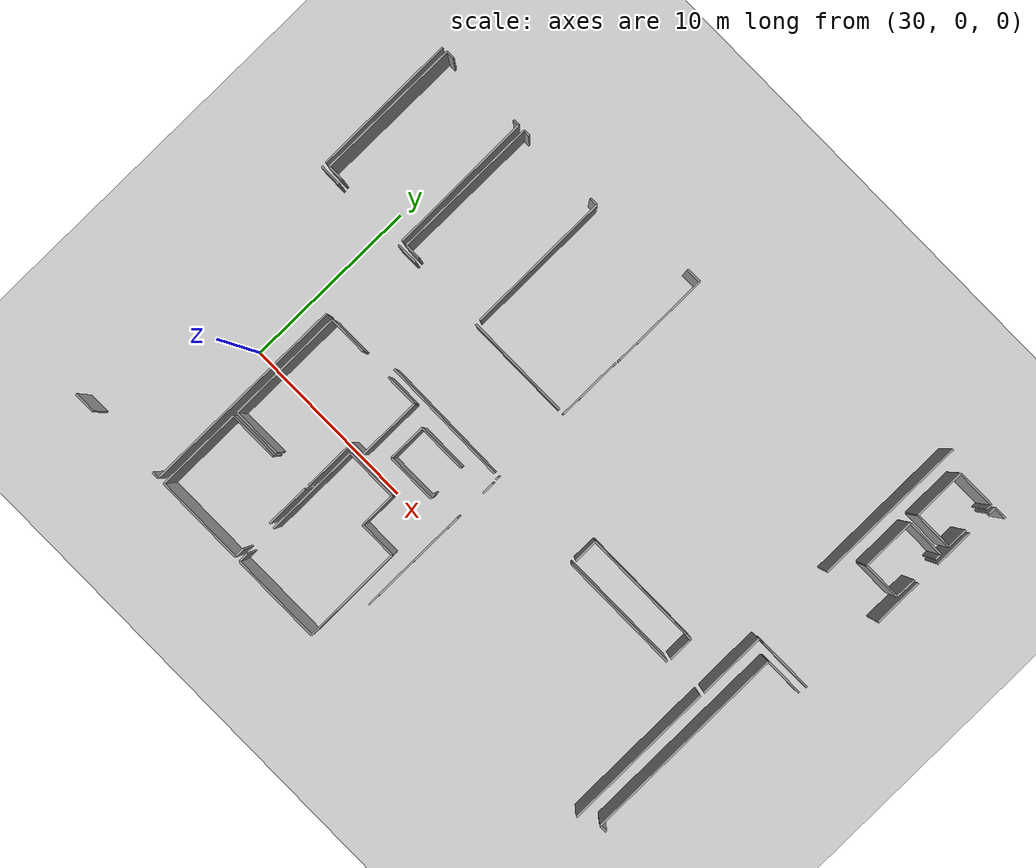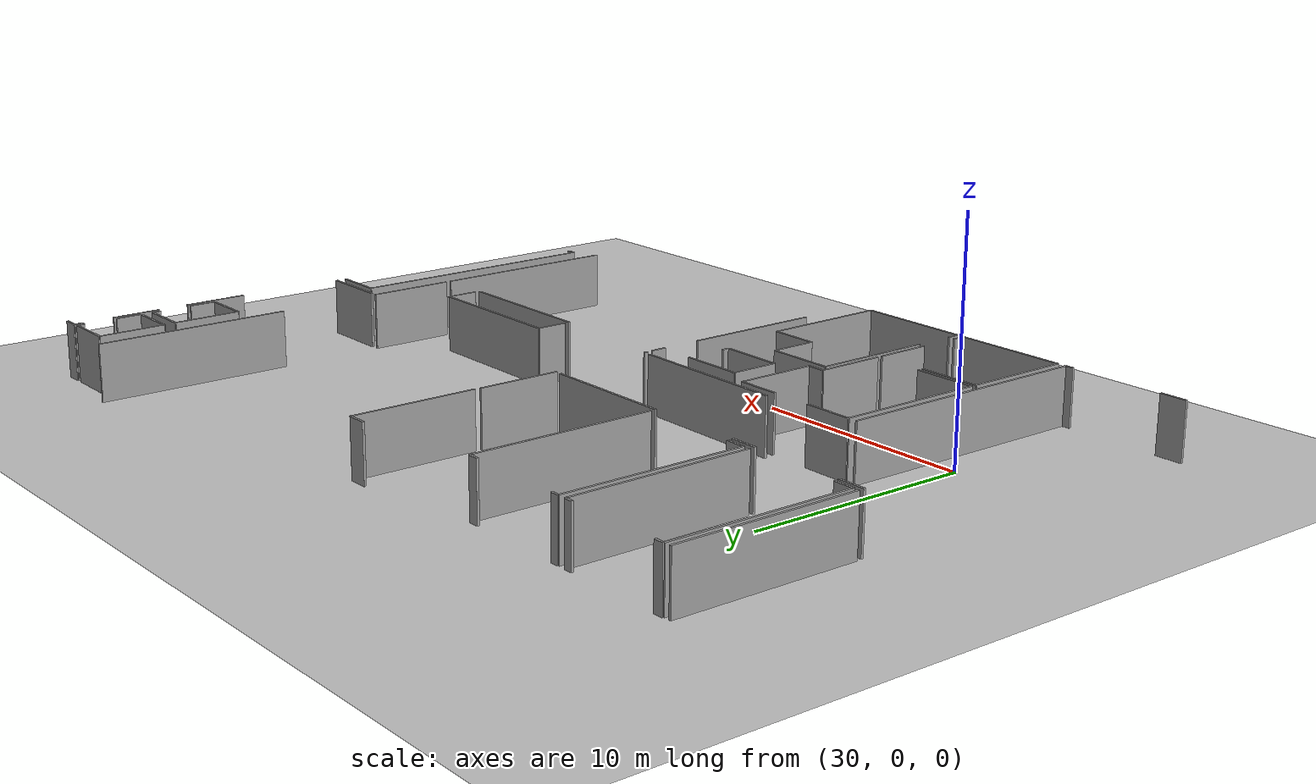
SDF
<sdf version="1.6">
 <world name="default">
  <model name="ground_plane">
   <static>1</static>
   <link name="link">
    <collision name="collision">
     <geometry><plane><normal>0 0 1</normal><size>100 100</size></plane></geometry>
     <surface><friction><ode><mu>100</mu><mu2>50</mu2></ode></friction></surface>
    </collision>
    <visual name="visual">
     <cast_shadows>0</cast_shadows>
     <geometry><plane><normal>0 0 1</normal><size>100 100</size></plane></geometry>
     <material>
      <script><uri>file://media/materials/scripts/gazebo.material</uri><name>Gazebo/Grey</name></script>
     </material>
    </visual>
   </link>
  </model>
  <model name="50037764_PLAN2">
   <static>1</static>
   <link name="Wall_268">
    <collision name="Wall_268_Collision">
     <geometry><box><size>5.89633433321 0.1 2.5</size></box></geometry>
     <pose>2.94816716661 0 1.25 0 0 0</pose>
    </collision>
    <visual name="Wall_268_Visual">
     <pose>2.94816716661 0 1.25 0 0 0</pose>
     <geometry><box><size>5.89633433321 0.1 2.5</size></box></geometry>
     <material>
      <script><uri>file://media/materials/scripts/gazebo.material</uri><name>Gazebo/Grey</name></script>
      <ambient>1 1 1 1</ambient>
     </material>
    </visual>
    <pose>178.520209467 -12.4780873456 0 0 0 3.14159265359</pose>
   </link>
   <link name="Wall_269">
    <collision name="Wall_269_Collision">
     <geometry><box><size>1.21333062179 0.1 2.5</size></box></geometry>
     <pose>0.606665310895 0 1.25 0 0 0</pose>
    </collision>
    <visual name="Wall_269_Visual">
     <pose>0.606665310895 0 1.25 0 0 0</pose>
     <geometry><box><size>1.21333062179 0.1 2.5</size></box></geometry>
     <material>
      <script><uri>file://media/materials/scripts/gazebo.material</uri><name>Gazebo/Grey</name></script>
      <ambient>1 1 1 1</ambient>
     </material>
    </visual>
    <pose>168.37124409 -12.4780873456 0 0 0 3.14159265359</pose>
   </link>
   <link name="Wall_270">
    <collision name="Wall_270_Collision">
     <geometry><box><size>1.20621282221 0.1 2.5</size></box></geometry>
     <pose>0.603106411104 0 1.25 0 0 0</pose>
    </collision>
    <visual name="Wall_270_Visual">
     <pose>0.603106411104 0 1.25 0 0 0</pose>
     <geometry><box><size>1.20621282221 0.1 2.5</size></box></geometry>
     <material>
      <script><uri>file://media/materials/scripts/gazebo.material</uri><name>Gazebo/Grey</name></script>
      <ambient>1 1 1 1</ambient>
     </material>
    </visual>
    <pose>162.987137119 -12.4780873456 0 0 0 3.14159265359</pose>
   </link>
   <link name="Wall_286">
    <collision name="Wall_286_Collision">
     <geometry><box><size>7.1165475396 0.1 2.5</size></box></geometry>
     <pose>3.5582737698 0 1.25 0 0 0</pose>
    </collision>
    <visual name="Wall_286_Visual">
     <pose>3.5582737698 0 1.25 0 0 0</pose>
     <geometry><box><size>7.1165475396 0.1 2.5</size></box></geometry>
     <material>
      <script><uri>file://media/materials/scripts/gazebo.material</uri><name>Gazebo/Grey</name></script>
      <ambient>1 1 1 1</ambient>
     </material>
    </visual>
    <pose>171.403935126 -16.8886826987 0 0 0 -0.00876236772157</pose>
   </link>
   <link name="Wall_327">
    <collision name="Wall_327_Collision">
     <geometry><box><size>8.08495808962 0.1 2.5</size></box></geometry>
     <pose>4.04247904481 0 1.25 0 0 0</pose>
    </collision>
    <visual name="Wall_327_Visual">
     <pose>4.04247904481 0 1.25 0 0 0</pose>
     <geometry><box><size>8.08495808962 0.1 2.5</size></box></geometry>
     <material>
      <script><uri>file://media/materials/scripts/gazebo.material</uri><name>Gazebo/Grey</name></script>
      <ambient>1 1 1 1</ambient>
     </material>
    </visual>
    <pose>161.756266206 -4.13188265799 0 0 0 -1.56639443473</pose>
   </link>
   <link name="Wall_328">
    <collision name="Wall_328_Collision">
     <geometry><box><size>0.890233362143 0.1 2.5</size></box></geometry>
     <pose>0.445116681072 0 1.25 0 0 0</pose>
    </collision>
    <visual name="Wall_328_Visual">
     <pose>0.445116681072 0 1.25 0 0 0</pose>
     <geometry><box><size>0.890233362143 0.1 2.5</size></box></geometry>
     <material>
      <script><uri>file://media/materials/scripts/gazebo.material</uri><name>Gazebo/Grey</name></script>
      <ambient>1 1 1 1</ambient>
     </material>
    </visual>
    <pose>162.941634043 -12.2215160913 0 0 0 3.14159265359</pose>
   </link>
   <link name="Wall_329">
    <collision name="Wall_329_Collision">
     <geometry><box><size>8.09926788347 0.1 2.5</size></box></geometry>
     <pose>4.04963394174 0 1.25 0 0 0</pose>
    </collision>
    <visual name="Wall_329_Visual">
     <pose>4.04963394174 0 1.25 0 0 0</pose>
     <geometry><box><size>8.09926788347 0.1 2.5</size></box></geometry>
     <material>
      <script><uri>file://media/materials/scripts/gazebo.material</uri><name>Gazebo/Grey</name></script>
      <ambient>1 1 1 1</ambient>
     </material>
    </visual>
    <pose>162.051400681 -12.2215160913 0 0 0 1.57079632679</pose>
   </link>
   <link name="Wall_330">
    <collision name="Wall_330_Collision">
     <geometry><box><size>0.449183995119 0.1 2.5</size></box></geometry>
     <pose>0.22459199756 0 1.25 0 0 0</pose>
    </collision>
    <visual name="Wall_330_Visual">
     <pose>0.22459199756 0 1.25 0 0 0</pose>
     <geometry><box><size>0.449183995119 0.1 2.5</size></box></geometry>
     <material>
      <script><uri>file://media/materials/scripts/gazebo.material</uri><name>Gazebo/Grey</name></script>
      <ambient>1 1 1 1</ambient>
     </material>
    </visual>
    <pose>162.051400681 -4.12224820784 0 0 0 0.0</pose>
   </link>
   <link name="Wall_331">
    <collision name="Wall_331_Collision">
     <geometry><box><size>0.368346128425 0.1 2.5</size></box></geometry>
     <pose>0.184173064213 0 1.25 0 0 0</pose>
    </collision>
    <visual name="Wall_331_Visual">
     <pose>0.184173064213 0 1.25 0 0 0</pose>
     <geometry><box><size>0.368346128425 0.1 2.5</size></box></geometry>
     <material>
      <script><uri>file://media/materials/scripts/gazebo.material</uri><name>Gazebo/Grey</name></script>
      <ambient>1 1 1 1</ambient>
     </material>
    </visual>
    <pose>166.728049214 -4.12224820784 0 0 0 0.0</pose>
   </link>
   <link name="Wall_332">
    <collision name="Wall_332_Collision">
     <geometry><box><size>8.09960802235 0.1 2.5</size></box></geometry>
     <pose>4.04980401117 0 1.25 0 0 0</pose>
    </collision>
    <visual name="Wall_332_Visual">
     <pose>4.04980401117 0 1.25 0 0 0</pose>
     <geometry><box><size>8.09960802235 0.1 2.5</size></box></geometry>
     <material>
      <script><uri>file://media/materials/scripts/gazebo.material</uri><name>Gazebo/Grey</name></script>
      <ambient>1 1 1 1</ambient>
     </material>
    </visual>
    <pose>167.096395343 -4.12224820784 0 0 0 -1.56163174497</pose>
   </link>
   <link name="Wall_333">
    <collision name="Wall_333_Collision">
     <geometry><box><size>0.869134170522 0.1 2.5</size></box></geometry>
     <pose>0.434567085261 0 1.25 0 0 0</pose>
    </collision>
    <visual name="Wall_333_Visual">
     <pose>0.434567085261 0 1.25 0 0 0</pose>
     <geometry><box><size>0.869134170522 0.1 2.5</size></box></geometry>
     <material>
      <script><uri>file://media/materials/scripts/gazebo.material</uri><name>Gazebo/Grey</name></script>
      <ambient>1 1 1 1</ambient>
     </material>
    </visual>
    <pose>168.340993441 -12.216762418 0 0 0 3.14159265359</pose>
   </link>
   <link name="Wall_334">
    <collision name="Wall_334_Collision">
     <geometry><box><size>8.09657328791 0.1 2.5</size></box></geometry>
     <pose>4.04828664396 0 1.25 0 0 0</pose>
    </collision>
    <visual name="Wall_334_Visual">
     <pose>4.04828664396 0 1.25 0 0 0</pose>
     <geometry><box><size>8.09657328791 0.1 2.5</size></box></geometry>
     <material>
      <script><uri>file://media/materials/scripts/gazebo.material</uri><name>Gazebo/Grey</name></script>
      <ambient>1 1 1 1</ambient>
     </material>
    </visual>
    <pose>167.471859271 -12.216762418 0 0 0 1.57079632679</pose>
   </link>
   <link name="Wall_335">
    <collision name="Wall_335_Collision">
     <geometry><box><size>0.368600335553 0.1 2.5</size></box></geometry>
     <pose>0.184300167777 0 1.25 0 0 0</pose>
    </collision>
    <visual name="Wall_335_Visual">
     <pose>0.184300167777 0 1.25 0 0 0</pose>
     <geometry><box><size>0.368600335553 0.1 2.5</size></box></geometry>
     <material>
      <script><uri>file://media/materials/scripts/gazebo.material</uri><name>Gazebo/Grey</name></script>
      <ambient>1 1 1 1</ambient>
     </material>
    </visual>
    <pose>167.471859271 -4.1201891301 0 0 0 0.0</pose>
   </link>
   <link name="Wall_336">
    <collision name="Wall_336_Collision">
     <geometry><box><size>0.468249529717 0.1 2.5</size></box></geometry>
     <pose>0.234124764858 0 1.25 0 0 0</pose>
    </collision>
    <visual name="Wall_336_Visual">
     <pose>0.234124764858 0 1.25 0 0 0</pose>
     <geometry><box><size>0.468249529717 0.1 2.5</size></box></geometry>
     <material>
      <script><uri>file://media/materials/scripts/gazebo.material</uri><name>Gazebo/Grey</name></script>
      <ambient>1 1 1 1</ambient>
     </material>
    </visual>
    <pose>172.122578677 -4.1201891301 0 0 0 0.0</pose>
   </link>
   <link name="Wall_337">
    <collision name="Wall_337_Collision">
     <geometry><box><size>8.09666427833 0.1 2.5</size></box></geometry>
     <pose>4.04833213917 0 1.25 0 0 0</pose>
    </collision>
    <visual name="Wall_337_Visual">
     <pose>4.04833213917 0 1.25 0 0 0</pose>
     <geometry><box><size>8.09666427833 0.1 2.5</size></box></geometry>
     <material>
      <script><uri>file://media/materials/scripts/gazebo.material</uri><name>Gazebo/Grey</name></script>
      <ambient>1 1 1 1</ambient>
     </material>
    </visual>
    <pose>172.590828207 -4.1201891301 0 0 0 -1.56605543366</pose>
   </link>
   <link name="Wall_372">
    <collision name="Wall_372_Collision">
     <geometry><box><size>0.393766841222 0.1 2.5</size></box></geometry>
     <pose>0.196883420611 0 1.25 0 0 0</pose>
    </collision>
    <visual name="Wall_372_Visual">
     <pose>0.196883420611 0 1.25 0 0 0</pose>
     <geometry><box><size>0.393766841222 0.1 2.5</size></box></geometry>
     <material>
      <script><uri>file://media/materials/scripts/gazebo.material</uri><name>Gazebo/Grey</name></script>
      <ambient>1 1 1 1</ambient>
     </material>
    </visual>
    <pose>167.128933855 -28.941227312 0 0 0 3.14159265359</pose>
   </link>
   <link name="Wall_373">
    <collision name="Wall_373_Collision">
     <geometry><box><size>1.19960343688 0.1 2.5</size></box></geometry>
     <pose>0.59980171844 0 1.25 0 0 0</pose>
    </collision>
    <visual name="Wall_373_Visual">
     <pose>0.59980171844 0 1.25 0 0 0</pose>
     <geometry><box><size>1.19960343688 0.1 2.5</size></box></geometry>
     <material>
      <script><uri>file://media/materials/scripts/gazebo.material</uri><name>Gazebo/Grey</name></script>
      <ambient>1 1 1 1</ambient>
     </material>
    </visual>
    <pose>162.544054095 -28.941227312 0 0 0 3.14159265359</pose>
   </link>
   <link name="Wall_378">
    <collision name="Wall_378_Collision">
     <geometry><box><size>11.5734404393 0.1 2.5</size></box></geometry>
     <pose>5.78672021963 0 1.25 0 0 0</pose>
    </collision>
    <visual name="Wall_378_Visual">
     <pose>5.78672021963 0 1.25 0 0 0</pose>
     <geometry><box><size>11.5734404393 0.1 2.5</size></box></geometry>
     <material>
      <script><uri>file://media/materials/scripts/gazebo.material</uri><name>Gazebo/Grey</name></script>
      <ambient>1 1 1 1</ambient>
     </material>
    </visual>
    <pose>167.128933855 -17.3677868727 0 0 0 -1.57079632679</pose>
   </link>
   <link name="Wall_379">
    <collision name="Wall_379_Collision">
     <geometry><box><size>6.54357110173 0.1 2.5</size></box></geometry>
     <pose>3.27178555087 0 1.25 0 0 0</pose>
    </collision>
    <visual name="Wall_379_Visual">
     <pose>3.27178555087 0 1.25 0 0 0</pose>
     <geometry><box><size>6.54357110173 0.1 2.5</size></box></geometry>
     <material>
      <script><uri>file://media/materials/scripts/gazebo.material</uri><name>Gazebo/Grey</name></script>
      <ambient>1 1 1 1</ambient>
     </material>
    </visual>
    <pose>167.538715746 -23.9208907418 0 0 0 1.57079632679</pose>
   </link>
   <link name="Wall_380">
    <collision name="Wall_380_Collision">
     <geometry><box><size>2.16609893741 0.1 2.5</size></box></geometry>
     <pose>1.08304946871 0 1.25 0 0 0</pose>
    </collision>
    <visual name="Wall_380_Visual">
     <pose>1.08304946871 0 1.25 0 0 0</pose>
     <geometry><box><size>2.16609893741 0.1 2.5</size></box></geometry>
     <material>
      <script><uri>file://media/materials/scripts/gazebo.material</uri><name>Gazebo/Grey</name></script>
      <ambient>1 1 1 1</ambient>
     </material>
    </visual>
    <pose>167.538715746 -17.37731964 0 0 0 0.0</pose>
   </link>
   <link name="Wall_381">
    <collision name="Wall_381_Collision">
     <geometry><box><size>1.8524073415 0.1 2.5</size></box></geometry>
     <pose>0.926203670751 0 1.25 0 0 0</pose>
    </collision>
    <visual name="Wall_381_Visual">
     <pose>0.926203670751 0 1.25 0 0 0</pose>
     <geometry><box><size>1.8524073415 0.1 2.5</size></box></geometry>
     <material>
      <script><uri>file://media/materials/scripts/gazebo.material</uri><name>Gazebo/Grey</name></script>
      <ambient>1 1 1 1</ambient>
     </material>
    </visual>
    <pose>171.48324775 -17.37731964 0 0 0 0.0</pose>
   </link>
   <link name="Wall_382">
    <collision name="Wall_382_Collision">
     <geometry><box><size>3.5301998068 0.1 2.5</size></box></geometry>
     <pose>1.7650999034 0 1.25 0 0 0</pose>
    </collision>
    <visual name="Wall_382_Visual">
     <pose>1.7650999034 0 1.25 0 0 0</pose>
     <geometry><box><size>3.5301998068 0.1 2.5</size></box></geometry>
     <material>
      <script><uri>file://media/materials/scripts/gazebo.material</uri><name>Gazebo/Grey</name></script>
      <ambient>1 1 1 1</ambient>
     </material>
    </visual>
    <pose>173.335655092 -17.37731964 0 0 0 -1.57079632679</pose>
   </link>
   <link name="Wall_383">
    <collision name="Wall_383_Collision">
     <geometry><box><size>0.777619604454 0.1 2.5</size></box></geometry>
     <pose>0.388809802227 0 1.25 0 0 0</pose>
    </collision>
    <visual name="Wall_383_Visual">
     <pose>0.388809802227 0 1.25 0 0 0</pose>
     <geometry><box><size>0.777619604454 0.1 2.5</size></box></geometry>
     <material>
      <script><uri>file://media/materials/scripts/gazebo.material</uri><name>Gazebo/Grey</name></script>
      <ambient>1 1 1 1</ambient>
     </material>
    </visual>
    <pose>173.335655092 -20.9075194468 0 0 0 3.14159265359</pose>
   </link>
   <link name="Wall_384">
    <collision name="Wall_384_Collision">
     <geometry><box><size>3.00650770248 0.1 2.5</size></box></geometry>
     <pose>1.50325385124 0 1.25 0 0 0</pose>
    </collision>
    <visual name="Wall_384_Visual">
     <pose>1.50325385124 0 1.25 0 0 0</pose>
     <geometry><box><size>3.00650770248 0.1 2.5</size></box></geometry>
     <material>
      <script><uri>file://media/materials/scripts/gazebo.material</uri><name>Gazebo/Grey</name></script>
      <ambient>1 1 1 1</ambient>
     </material>
    </visual>
    <pose>172.558035487 -20.9075194468 0 0 0 -1.57079632679</pose>
   </link>
   <link name="Wall_385">
    <collision name="Wall_385_Collision">
     <geometry><box><size>2.7739166718 0.1 2.5</size></box></geometry>
     <pose>1.3869583359 0 1.25 0 0 0</pose>
    </collision>
    <visual name="Wall_385_Visual">
     <pose>1.3869583359 0 1.25 0 0 0</pose>
     <geometry><box><size>2.7739166718 0.1 2.5</size></box></geometry>
     <material>
      <script><uri>file://media/materials/scripts/gazebo.material</uri><name>Gazebo/Grey</name></script>
      <ambient>1 1 1 1</ambient>
     </material>
    </visual>
    <pose>170.312623926 -23.9140271493 0 0 0 -3.13911831846</pose>
   </link>
   <link name="Wall_386">
    <collision name="Wall_386_Collision">
     <geometry><box><size>5.01754029183 0.1 2.5</size></box></geometry>
     <pose>2.50877014591 0 1.25 0 0 0</pose>
    </collision>
    <visual name="Wall_386_Visual">
     <pose>2.50877014591 0 1.25 0 0 0</pose>
     <geometry><box><size>5.01754029183 0.1 2.5</size></box></geometry>
     <material>
      <script><uri>file://media/materials/scripts/gazebo.material</uri><name>Gazebo/Grey</name></script>
      <ambient>1 1 1 1</ambient>
     </material>
    </visual>
    <pose>172.542020438 -28.9297879913 0 0 0 3.14159265359</pose>
   </link>
   <link name="Wall_387">
    <collision name="Wall_387_Collision">
     <geometry><box><size>4.77756876303 0.1 2.5</size></box></geometry>
     <pose>2.38878438151 0 1.25 0 0 0</pose>
    </collision>
    <visual name="Wall_387_Visual">
     <pose>2.38878438151 0 1.25 0 0 0</pose>
     <geometry><box><size>4.77756876303 0.1 2.5</size></box></geometry>
     <material>
      <script><uri>file://media/materials/scripts/gazebo.material</uri><name>Gazebo/Grey</name></script>
      <ambient>1 1 1 1</ambient>
     </material>
    </visual>
    <pose>167.524480146 -28.9297879913 0 0 0 1.57079632679</pose>
   </link>
   <link name="Wall_388">
    <collision name="Wall_388_Collision">
     <geometry><box><size>2.78051756571 0.1 2.5</size></box></geometry>
     <pose>1.39025878286 0 1.25 0 0 0</pose>
    </collision>
    <visual name="Wall_388_Visual">
     <pose>1.39025878286 0 1.25 0 0 0</pose>
     <geometry><box><size>2.78051756571 0.1 2.5</size></box></geometry>
     <material>
      <script><uri>file://media/materials/scripts/gazebo.material</uri><name>Gazebo/Grey</name></script>
      <ambient>1 1 1 1</ambient>
     </material>
    </visual>
    <pose>167.524480146 -24.1522192282 0 0 0 0.0</pose>
   </link>
   <link name="Wall_389">
    <collision name="Wall_389_Collision">
     <geometry><box><size>2.4241191723 0.1 2.5</size></box></geometry>
     <pose>1.21205958615 0 1.25 0 0 0</pose>
    </collision>
    <visual name="Wall_389_Visual">
     <pose>1.21205958615 0 1.25 0 0 0</pose>
     <geometry><box><size>2.4241191723 0.1 2.5</size></box></geometry>
     <material>
      <script><uri>file://media/materials/scripts/gazebo.material</uri><name>Gazebo/Grey</name></script>
      <ambient>1 1 1 1</ambient>
     </material>
    </visual>
    <pose>172.552951345 -24.1522192282 0 0 0 -1.57079632679</pose>
   </link>
   <link name="Wall_390">
    <collision name="Wall_390_Collision">
     <geometry><box><size>0.560124972051 0.1 2.5</size></box></geometry>
     <pose>0.280062486025 0 1.25 0 0 0</pose>
    </collision>
    <visual name="Wall_390_Visual">
     <pose>0.280062486025 0 1.25 0 0 0</pose>
     <geometry><box><size>0.560124972051 0.1 2.5</size></box></geometry>
     <material>
      <script><uri>file://media/materials/scripts/gazebo.material</uri><name>Gazebo/Grey</name></script>
      <ambient>1 1 1 1</ambient>
     </material>
    </visual>
    <pose>172.552951345 -28.3697696883 0 0 0 -1.59031268651</pose>
   </link>
   <link name="Wall_391">
    <collision name="Wall_391_Collision">
     <geometry><box><size>5.06914433881 0.1 2.5</size></box></geometry>
     <pose>2.5345721694 0 1.25 0 0 0</pose>
    </collision>
    <visual name="Wall_391_Visual">
     <pose>2.5345721694 0 1.25 0 0 0</pose>
     <geometry><box><size>5.06914433881 0.1 2.5</size></box></geometry>
     <material>
      <script><uri>file://media/materials/scripts/gazebo.material</uri><name>Gazebo/Grey</name></script>
      <ambient>1 1 1 1</ambient>
     </material>
    </visual>
    <pose>177.925873201 -28.9465656617 0 0 0 3.14159265359</pose>
   </link>
   <link name="Wall_392">
    <collision name="Wall_392_Collision">
     <geometry><box><size>0.55671361025 0.1 2.5</size></box></geometry>
     <pose>0.278356805125 0 1.25 0 0 0</pose>
    </collision>
    <visual name="Wall_392_Visual">
     <pose>0.278356805125 0 1.25 0 0 0</pose>
     <geometry><box><size>0.55671361025 0.1 2.5</size></box></geometry>
     <material>
      <script><uri>file://media/materials/scripts/gazebo.material</uri><name>Gazebo/Grey</name></script>
      <ambient>1 1 1 1</ambient>
     </material>
    </visual>
    <pose>172.856728863 -28.9465656617 0 0 0 1.57079632679</pose>
   </link>
   <link name="Wall_393">
    <collision name="Wall_393_Collision">
     <geometry><box><size>5.28471198332 0.1 2.5</size></box></geometry>
     <pose>2.64235599166 0 1.25 0 0 0</pose>
    </collision>
    <visual name="Wall_393_Visual">
     <pose>2.64235599166 0 1.25 0 0 0</pose>
     <geometry><box><size>5.28471198332 0.1 2.5</size></box></geometry>
     <material>
      <script><uri>file://media/materials/scripts/gazebo.material</uri><name>Gazebo/Grey</name></script>
      <ambient>1 1 1 1</ambient>
     </material>
    </visual>
    <pose>172.856728863 -26.6185367838 0 0 0 1.57079632679</pose>
   </link>
   <link name="Wall_394">
    <collision name="Wall_394_Collision">
     <geometry><box><size>2.94524378464 0.1 2.5</size></box></geometry>
     <pose>1.47262189232 0 1.25 0 0 0</pose>
    </collision>
    <visual name="Wall_394_Visual">
     <pose>1.47262189232 0 1.25 0 0 0</pose>
     <geometry><box><size>2.94524378464 0.1 2.5</size></box></geometry>
     <material>
      <script><uri>file://media/materials/scripts/gazebo.material</uri><name>Gazebo/Grey</name></script>
      <ambient>1 1 1 1</ambient>
     </material>
    </visual>
    <pose>172.856728863 -21.3338248004 0 0 0 0.0</pose>
   </link>
   <link name="Wall_395">
    <collision name="Wall_395_Collision">
     <geometry><box><size>2.0260308099 0.1 2.5</size></box></geometry>
     <pose>1.01301540495 0 1.25 0 0 0</pose>
    </collision>
    <visual name="Wall_395_Visual">
     <pose>1.01301540495 0 1.25 0 0 0</pose>
     <geometry><box><size>2.0260308099 0.1 2.5</size></box></geometry>
     <material>
      <script><uri>file://media/materials/scripts/gazebo.material</uri><name>Gazebo/Grey</name></script>
      <ambient>1 1 1 1</ambient>
     </material>
    </visual>
    <pose>175.801972647 -21.3338248004 0 0 0 -1.57079632679</pose>
   </link>
   <link name="Wall_396">
    <collision name="Wall_396_Collision">
     <geometry><box><size>2.0832274137 0.1 2.5</size></box></geometry>
     <pose>1.04161370685 0 1.25 0 0 0</pose>
    </collision>
    <visual name="Wall_396_Visual">
     <pose>1.04161370685 0 1.25 0 0 0</pose>
     <geometry><box><size>2.0832274137 0.1 2.5</size></box></geometry>
     <material>
      <script><uri>file://media/materials/scripts/gazebo.material</uri><name>Gazebo/Grey</name></script>
      <ambient>1 1 1 1</ambient>
     </material>
    </visual>
    <pose>175.801972647 -23.3598556104 0 0 0 0.0</pose>
   </link>
   <link name="Wall_397">
    <collision name="Wall_397_Collision">
     <geometry><box><size>5.5868581065 0.1 2.5</size></box></geometry>
     <pose>2.79342905325 0 1.25 0 0 0</pose>
    </collision>
    <visual name="Wall_397_Visual">
     <pose>2.79342905325 0 1.25 0 0 0</pose>
     <geometry><box><size>5.5868581065 0.1 2.5</size></box></geometry>
     <material>
      <script><uri>file://media/materials/scripts/gazebo.material</uri><name>Gazebo/Grey</name></script>
      <ambient>1 1 1 1</ambient>
     </material>
    </visual>
    <pose>177.885200061 -23.3598556104 0 0 0 -1.56351611688</pose>
   </link>
   <link name="Wall_398">
    <collision name="Wall_398_Collision">
     <geometry><box><size>1.37376074025 0.1 2.5</size></box></geometry>
     <pose>0.686880370126 0 1.25 0 0 0</pose>
    </collision>
    <visual name="Wall_398_Visual">
     <pose>0.686880370126 0 1.25 0 0 0</pose>
     <geometry><box><size>1.37376074025 0.1 2.5</size></box></geometry>
     <material>
      <script><uri>file://media/materials/scripts/gazebo.material</uri><name>Gazebo/Grey</name></script>
      <ambient>1 1 1 1</ambient>
     </material>
    </visual>
    <pose>191.109054858 -17.126925619 0 0 0 1.57079632679</pose>
   </link>
   <link name="Wall_399">
    <collision name="Wall_399_Collision">
     <geometry><box><size>6.71488128527 0.1 2.5</size></box></geometry>
     <pose>3.35744064264 0 1.25 0 0 0</pose>
    </collision>
    <visual name="Wall_399_Visual">
     <pose>3.35744064264 0 1.25 0 0 0</pose>
     <geometry><box><size>6.71488128527 0.1 2.5</size></box></geometry>
     <material>
      <script><uri>file://media/materials/scripts/gazebo.material</uri><name>Gazebo/Grey</name></script>
      <ambient>1 1 1 1</ambient>
     </material>
    </visual>
    <pose>191.109054858 -15.7531648787 0 0 0 3.14159265359</pose>
   </link>
   <link name="Wall_400">
    <collision name="Wall_400_Collision">
     <geometry><box><size>1.35179724439 0.1 2.5</size></box></geometry>
     <pose>0.675898622197 0 1.25 0 0 0</pose>
    </collision>
    <visual name="Wall_400_Visual">
     <pose>0.675898622197 0 1.25 0 0 0</pose>
     <geometry><box><size>1.35179724439 0.1 2.5</size></box></geometry>
     <material>
      <script><uri>file://media/materials/scripts/gazebo.material</uri><name>Gazebo/Grey</name></script>
      <ambient>1 1 1 1</ambient>
     </material>
    </visual>
    <pose>184.394173573 -15.7531648787 0 0 0 -1.57079632679</pose>
   </link>
   <link name="Wall_401">
    <collision name="Wall_401_Collision">
     <geometry><box><size>0.164853322487 0.1 2.5</size></box></geometry>
     <pose>0.0824266612436 0 1.25 0 0 0</pose>
    </collision>
    <visual name="Wall_401_Visual">
     <pose>0.0824266612436 0 1.25 0 0 0</pose>
     <geometry><box><size>0.164853322487 0.1 2.5</size></box></geometry>
     <material>
      <script><uri>file://media/materials/scripts/gazebo.material</uri><name>Gazebo/Grey</name></script>
      <ambient>1 1 1 1</ambient>
     </material>
    </visual>
    <pose>178.800345722 -17.1049621231 0 0 0 1.57079632679</pose>
   </link>
   <link name="Wall_402">
    <collision name="Wall_402_Collision">
     <geometry><box><size>3.61388479333 0.1 2.5</size></box></geometry>
     <pose>1.80694239666 0 1.25 0 0 0</pose>
    </collision>
    <visual name="Wall_402_Visual">
     <pose>1.80694239666 0 1.25 0 0 0</pose>
     <geometry><box><size>3.61388479333 0.1 2.5</size></box></geometry>
     <material>
      <script><uri>file://media/materials/scripts/gazebo.material</uri><name>Gazebo/Grey</name></script>
      <ambient>1 1 1 1</ambient>
     </material>
    </visual>
    <pose>178.800345722 -12.504957039 0 0 0 1.57079632679</pose>
   </link>
   <link name="Wall_403">
    <collision name="Wall_403_Collision">
     <geometry><box><size>3.80410867517 0.1 2.5</size></box></geometry>
     <pose>1.90205433759 0 1.25 0 0 0</pose>
    </collision>
    <visual name="Wall_403_Visual">
     <pose>1.90205433759 0 1.25 0 0 0</pose>
     <geometry><box><size>3.80410867517 0.1 2.5</size></box></geometry>
     <material>
      <script><uri>file://media/materials/scripts/gazebo.material</uri><name>Gazebo/Grey</name></script>
      <ambient>1 1 1 1</ambient>
     </material>
    </visual>
    <pose>193.436829529 -13.3228176318 0 0 0 -1.57019490752</pose>
   </link>
   <link name="Wall_404">
    <collision name="Wall_404_Collision">
     <geometry><box><size>5.48515430373 0.1 2.5</size></box></geometry>
     <pose>2.74257715186 0 1.25 0 0 0</pose>
    </collision>
    <visual name="Wall_404_Visual">
     <pose>2.74257715186 0 1.25 0 0 0</pose>
     <geometry><box><size>5.48515430373 0.1 2.5</size></box></geometry>
     <material>
      <script><uri>file://media/materials/scripts/gazebo.material</uri><name>Gazebo/Grey</name></script>
      <ambient>1 1 1 1</ambient>
     </material>
    </visual>
    <pose>178.83771417 -8.63216228583 0 0 0 1.57079632679</pose>
   </link>
   <link name="Wall_405">
    <collision name="Wall_405_Collision">
     <geometry><box><size>0.865575270731 0.1 2.5</size></box></geometry>
     <pose>0.432787635365 0 1.25 0 0 0</pose>
    </collision>
    <visual name="Wall_405_Visual">
     <pose>0.432787635365 0 1.25 0 0 0</pose>
     <geometry><box><size>0.865575270731 0.1 2.5</size></box></geometry>
     <material>
      <script><uri>file://media/materials/scripts/gazebo.material</uri><name>Gazebo/Grey</name></script>
      <ambient>1 1 1 1</ambient>
     </material>
    </visual>
    <pose>178.83771417 -3.1470079821 0 0 0 3.14159265359</pose>
   </link>
   <link name="Wall_406">
    <collision name="Wall_406_Collision">
     <geometry><box><size>8.63216953238 0.1 2.5</size></box></geometry>
     <pose>4.31608476619 0 1.25 0 0 0</pose>
    </collision>
    <visual name="Wall_406_Visual">
     <pose>4.31608476619 0 1.25 0 0 0</pose>
     <geometry><box><size>8.63216953238 0.1 2.5</size></box></geometry>
     <material>
      <script><uri>file://media/materials/scripts/gazebo.material</uri><name>Gazebo/Grey</name></script>
      <ambient>1 1 1 1</ambient>
     </material>
    </visual>
    <pose>193.431999593 -0.0 0 0 0 -1.57209207484</pose>
   </link>
   <link name="Wall_407">
    <collision name="Wall_407_Collision">
     <geometry><box><size>6.11724032742 0.1 2.5</size></box></geometry>
     <pose>3.05862016371 0 1.25 0 0 0</pose>
    </collision>
    <visual name="Wall_407_Visual">
     <pose>3.05862016371 0 1.25 0 0 0</pose>
     <geometry><box><size>6.11724032742 0.1 2.5</size></box></geometry>
     <material>
      <script><uri>file://media/materials/scripts/gazebo.material</uri><name>Gazebo/Grey</name></script>
      <ambient>1 1 1 1</ambient>
     </material>
    </visual>
    <pose>178.82347857 -25.8838781839 0 0 0 1.57079632679</pose>
   </link>
   <link name="Wall_408">
    <collision name="Wall_408_Collision">
     <geometry><box><size>0.679749860186 0.1 2.5</size></box></geometry>
     <pose>0.339874930093 0 1.25 0 0 0</pose>
    </collision>
    <visual name="Wall_408_Visual">
     <pose>0.339874930093 0 1.25 0 0 0</pose>
     <geometry><box><size>0.679749860186 0.1 2.5</size></box></geometry>
     <material>
      <script><uri>file://media/materials/scripts/gazebo.material</uri><name>Gazebo/Grey</name></script>
      <ambient>1 1 1 1</ambient>
     </material>
    </visual>
    <pose>178.82347857 -18.0374701307 0 0 0 1.57079632679</pose>
   </link>
   <link name="Wall_409">
    <collision name="Wall_409_Collision">
     <geometry><box><size>6.6914942295 0.1 2.5</size></box></geometry>
     <pose>3.34574711475 0 1.25 0 0 0</pose>
    </collision>
    <visual name="Wall_409_Visual">
     <pose>3.34574711475 0 1.25 0 0 0</pose>
     <geometry><box><size>6.6914942295 0.1 2.5</size></box></geometry>
     <material>
      <script><uri>file://media/materials/scripts/gazebo.material</uri><name>Gazebo/Grey</name></script>
      <ambient>1 1 1 1</ambient>
     </material>
    </visual>
    <pose>184.381717423 -17.3577202705 0 0 0 0.0</pose>
   </link>
   <link name="Wall_410">
    <collision name="Wall_410_Collision">
     <geometry><box><size>8.52616282477 0.1 2.5</size></box></geometry>
     <pose>4.26308141239 0 1.25 0 0 0</pose>
    </collision>
    <visual name="Wall_410_Visual">
     <pose>4.26308141239 0 1.25 0 0 0</pose>
     <geometry><box><size>8.52616282477 0.1 2.5</size></box></geometry>
     <material>
      <script><uri>file://media/materials/scripts/gazebo.material</uri><name>Gazebo/Grey</name></script>
      <ambient>1 1 1 1</ambient>
     </material>
    </visual>
    <pose>193.424373379 -17.3577202705 0 0 0 -1.56972298835</pose>
   </link>
   <link name="Wall_411">
    <collision name="Wall_411_Collision">
     <geometry><box><size>2.76958665921 0.1 2.5</size></box></geometry>
     <pose>1.3847933296 0 1.25 0 0 0</pose>
    </collision>
    <visual name="Wall_411_Visual">
     <pose>1.3847933296 0 1.25 0 0 0</pose>
     <geometry><box><size>2.76958665921 0.1 2.5</size></box></geometry>
     <material>
      <script><uri>file://media/materials/scripts/gazebo.material</uri><name>Gazebo/Grey</name></script>
      <ambient>1 1 1 1</ambient>
     </material>
    </visual>
    <pose>177.206721236 -20.0503330113 0 0 0 3.14159265359</pose>
   </link>
   <link name="Wall_412">
    <collision name="Wall_412_Collision">
     <geometry><box><size>2.11169861203 0.1 2.5</size></box></geometry>
     <pose>1.05584930601 0 1.25 0 0 0</pose>
    </collision>
    <visual name="Wall_412_Visual">
     <pose>1.05584930601 0 1.25 0 0 0</pose>
     <geometry><box><size>2.11169861203 0.1 2.5</size></box></geometry>
     <material>
      <script><uri>file://media/materials/scripts/gazebo.material</uri><name>Gazebo/Grey</name></script>
      <ambient>1 1 1 1</ambient>
     </material>
    </visual>
    <pose>174.437134577 -20.0503330113 0 0 0 1.57079632679</pose>
   </link>
   <link name="Wall_413">
    <collision name="Wall_413_Collision">
     <geometry><box><size>2.74086125375 0.1 2.5</size></box></geometry>
     <pose>1.37043062687 0 1.25 0 0 0</pose>
    </collision>
    <visual name="Wall_413_Visual">
     <pose>1.37043062687 0 1.25 0 0 0</pose>
     <geometry><box><size>2.74086125375 0.1 2.5</size></box></geometry>
     <material>
      <script><uri>file://media/materials/scripts/gazebo.material</uri><name>Gazebo/Grey</name></script>
      <ambient>1 1 1 1</ambient>
     </material>
    </visual>
    <pose>174.437134577 -17.9386343993 0 0 0 0.0</pose>
   </link>
   <link name="Wall_414">
    <collision name="Wall_414_Collision">
     <geometry><box><size>0.309182129964 0.1 2.5</size></box></geometry>
     <pose>0.154591064982 0 1.25 0 0 0</pose>
    </collision>
    <visual name="Wall_414_Visual">
     <pose>0.154591064982 0 1.25 0 0 0</pose>
     <geometry><box><size>0.309182129964 0.1 2.5</size></box></geometry>
     <material>
      <script><uri>file://media/materials/scripts/gazebo.material</uri><name>Gazebo/Grey</name></script>
      <ambient>1 1 1 1</ambient>
     </material>
    </visual>
    <pose>177.177995831 -19.7424881794 0 0 0 -1.47775442832</pose>
   </link>
   <link name="Wall_431">
    <collision name="Wall_431_Collision">
     <geometry><box><size>3.04743505008 0.1 2.5</size></box></geometry>
     <pose>1.52371752504 0 1.25 0 0 0</pose>
    </collision>
    <visual name="Wall_431_Visual">
     <pose>1.52371752504 0 1.25 0 0 0</pose>
     <geometry><box><size>3.04743505008 0.1 2.5</size></box></geometry>
     <material>
      <script><uri>file://media/materials/scripts/gazebo.material</uri><name>Gazebo/Grey</name></script>
      <ambient>1 1 1 1</ambient>
     </material>
    </visual>
    <pose>193.724846205 -13.3189536835 0 0 0 0.0</pose>
   </link>
   <link name="Wall_441">
    <collision name="Wall_441_Collision">
     <geometry><box><size>2.76152829325 0.1 2.5</size></box></geometry>
     <pose>1.38076414663 0 1.25 0 0 0</pose>
    </collision>
    <visual name="Wall_441_Visual">
     <pose>1.38076414663 0 1.25 0 0 0</pose>
     <geometry><box><size>2.76152829325 0.1 2.5</size></box></geometry>
     <material>
      <script><uri>file://media/materials/scripts/gazebo.material</uri><name>Gazebo/Grey</name></script>
      <ambient>1 1 1 1</ambient>
     </material>
    </visual>
    <pose>196.939549545 -8.58287152372 0 0 0 1.57079632679</pose>
   </link>
   <link name="Wall_442">
    <collision name="Wall_442_Collision">
     <geometry><box><size>2.15618485942 0.1 2.5</size></box></geometry>
     <pose>1.07809242971 0 1.25 0 0 0</pose>
    </collision>
    <visual name="Wall_442_Visual">
     <pose>1.07809242971 0 1.25 0 0 0</pose>
     <geometry><box><size>2.15618485942 0.1 2.5</size></box></geometry>
     <material>
      <script><uri>file://media/materials/scripts/gazebo.material</uri><name>Gazebo/Grey</name></script>
      <ambient>1 1 1 1</ambient>
     </material>
    </visual>
    <pose>196.939549545 -4.46527530632 0 0 0 1.57079632679</pose>
   </link>
   <link name="Wall_443">
    <collision name="Wall_443_Collision">
     <geometry><box><size>0.391809446337 0.1 2.5</size></box></geometry>
     <pose>0.195904723168 0 1.25 0 0 0</pose>
    </collision>
    <visual name="Wall_443_Visual">
     <pose>0.195904723168 0 1.25 0 0 0</pose>
     <geometry><box><size>0.391809446337 0.1 2.5</size></box></geometry>
     <material>
      <script><uri>file://media/materials/scripts/gazebo.material</uri><name>Gazebo/Grey</name></script>
      <ambient>1 1 1 1</ambient>
     </material>
    </visual>
    <pose>196.939549545 -0.920865321064 0 0 0 1.57079632679</pose>
   </link>
   <link name="Wall_444">
    <collision name="Wall_444_Collision">
     <geometry><box><size>0.699069601912 0.1 2.5</size></box></geometry>
     <pose>0.349534800956 0 1.25 0 0 0</pose>
    </collision>
    <visual name="Wall_444_Visual">
     <pose>0.349534800956 0 1.25 0 0 0</pose>
     <geometry><box><size>0.699069601912 0.1 2.5</size></box></geometry>
     <material>
      <script><uri>file://media/materials/scripts/gazebo.material</uri><name>Gazebo/Grey</name></script>
      <ambient>1 1 1 1</ambient>
     </material>
    </visual>
    <pose>196.939549545 -0.529055874727 0 0 0 0.0</pose>
   </link>
   <link name="Wall_451">
    <collision name="Wall_451_Collision">
     <geometry><box><size>2.16940363008 0.1 2.5</size></box></geometry>
     <pose>1.08470181504 0 1.25 0 0 0</pose>
    </collision>
    <visual name="Wall_451_Visual">
     <pose>1.08470181504 0 1.25 0 0 0</pose>
     <geometry><box><size>2.16940363008 0.1 2.5</size></box></geometry>
     <material>
      <script><uri>file://media/materials/scripts/gazebo.material</uri><name>Gazebo/Grey</name></script>
      <ambient>1 1 1 1</ambient>
     </material>
    </visual>
    <pose>196.711779958 -3.50114393208 0 0 0 3.14159265359</pose>
   </link>
   <link name="Wall_452">
    <collision name="Wall_452_Collision">
     <geometry><box><size>2.94341349331 0.1 2.5</size></box></geometry>
     <pose>1.47170674666 0 1.25 0 0 0</pose>
    </collision>
    <visual name="Wall_452_Visual">
     <pose>1.47170674666 0 1.25 0 0 0</pose>
     <geometry><box><size>2.94341349331 0.1 2.5</size></box></geometry>
     <material>
      <script><uri>file://media/materials/scripts/gazebo.material</uri><name>Gazebo/Grey</name></script>
      <ambient>1 1 1 1</ambient>
     </material>
    </visual>
    <pose>194.542376328 -3.50114393208 0 0 0 1.57079632679</pose>
   </link>
   <link name="Wall_453">
    <collision name="Wall_453_Collision">
     <geometry><box><size>2.15974375921 0.1 2.5</size></box></geometry>
     <pose>1.07987187961 0 1.25 0 0 0</pose>
    </collision>
    <visual name="Wall_453_Visual">
     <pose>1.07987187961 0 1.25 0 0 0</pose>
     <geometry><box><size>2.15974375921 0.1 2.5</size></box></geometry>
     <material>
      <script><uri>file://media/materials/scripts/gazebo.material</uri><name>Gazebo/Grey</name></script>
      <ambient>1 1 1 1</ambient>
     </material>
    </visual>
    <pose>194.542376328 -0.557730438762 0 0 0 0.0</pose>
   </link>
   <link name="Wall_454">
    <collision name="Wall_454_Collision">
     <geometry><box><size>0.315369362957 0.1 2.5</size></box></geometry>
     <pose>0.157684681478 0 1.25 0 0 0</pose>
    </collision>
    <visual name="Wall_454_Visual">
     <pose>0.157684681478 0 1.25 0 0 0</pose>
     <geometry><box><size>0.315369362957 0.1 2.5</size></box></geometry>
     <material>
      <script><uri>file://media/materials/scripts/gazebo.material</uri><name>Gazebo/Grey</name></script>
      <ambient>1 1 1 1</ambient>
     </material>
    </visual>
    <pose>196.702120087 -0.557730438762 0 0 0 -1.57079632679</pose>
   </link>
   <link name="Wall_455">
    <collision name="Wall_455_Collision">
     <geometry><box><size>1.16303772726 0.1 2.5</size></box></geometry>
     <pose>0.581518863629 0 1.25 0 0 0</pose>
    </collision>
    <visual name="Wall_455_Visual">
     <pose>0.581518863629 0 1.25 0 0 0</pose>
     <geometry><box><size>1.16303772726 0.1 2.5</size></box></geometry>
     <material>
      <script><uri>file://media/materials/scripts/gazebo.material</uri><name>Gazebo/Grey</name></script>
      <ambient>1 1 1 1</ambient>
     </material>
    </visual>
    <pose>196.702120087 -2.33814632162 0 0 0 -1.56249050687</pose>
   </link>
   <link name="Wall_456">
    <collision name="Wall_456_Collision">
     <geometry><box><size>2.12034165438 0.1 2.5</size></box></geometry>
     <pose>1.06017082719 0 1.25 0 0 0</pose>
    </collision>
    <visual name="Wall_456_Visual">
     <pose>1.06017082719 0 1.25 0 0 0</pose>
     <geometry><box><size>2.12034165438 0.1 2.5</size></box></geometry>
     <material>
      <script><uri>file://media/materials/scripts/gazebo.material</uri><name>Gazebo/Grey</name></script>
      <ambient>1 1 1 1</ambient>
     </material>
    </visual>
    <pose>196.681783517 -7.02704763842 0 0 0 3.14159265359</pose>
   </link>
   <link name="Wall_457">
    <collision name="Wall_457_Collision">
     <geometry><box><size>2.99072143983 0.1 2.5</size></box></geometry>
     <pose>1.49536071991 0 1.25 0 0 0</pose>
    </collision>
    <visual name="Wall_457_Visual">
     <pose>1.49536071991 0 1.25 0 0 0</pose>
     <geometry><box><size>2.99072143983 0.1 2.5</size></box></geometry>
     <material>
      <script><uri>file://media/materials/scripts/gazebo.material</uri><name>Gazebo/Grey</name></script>
      <ambient>1 1 1 1</ambient>
     </material>
    </visual>
    <pose>194.561441863 -7.02704763842 0 0 0 1.57079632679</pose>
   </link>
   <link name="Wall_458">
    <collision name="Wall_458_Collision">
     <geometry><box><size>2.15033809548 0.1 2.5</size></box></geometry>
     <pose>1.07516904774 0 1.25 0 0 0</pose>
    </collision>
    <visual name="Wall_458_Visual">
     <pose>1.07516904774 0 1.25 0 0 0</pose>
     <geometry><box><size>2.15033809548 0.1 2.5</size></box></geometry>
     <material>
      <script><uri>file://media/materials/scripts/gazebo.material</uri><name>Gazebo/Grey</name></script>
      <ambient>1 1 1 1</ambient>
     </material>
    </visual>
    <pose>194.561441863 -4.03632619859 0 0 0 0.0</pose>
   </link>
   <link name="Wall_459">
    <collision name="Wall_459_Collision">
     <geometry><box><size>0.363134882302 0.1 2.5</size></box></geometry>
     <pose>0.181567441151 0 1.25 0 0 0</pose>
    </collision>
    <visual name="Wall_459_Visual">
     <pose>0.181567441151 0 1.25 0 0 0</pose>
     <geometry><box><size>0.363134882302 0.1 2.5</size></box></geometry>
     <material>
      <script><uri>file://media/materials/scripts/gazebo.material</uri><name>Gazebo/Grey</name></script>
      <ambient>1 1 1 1</ambient>
     </material>
    </visual>
    <pose>196.711779958 -4.03632619859 0 0 0 -1.57079632679</pose>
   </link>
   <link name="Wall_460">
    <collision name="Wall_460_Collision">
     <geometry><box><size>1.17576020017 0.1 2.5</size></box></geometry>
     <pose>0.587880100086 0 1.25 0 0 0</pose>
    </collision>
    <visual name="Wall_460_Visual">
     <pose>0.587880100086 0 1.25 0 0 0</pose>
     <geometry><box><size>1.17576020017 0.1 2.5</size></box></geometry>
     <material>
      <script><uri>file://media/materials/scripts/gazebo.material</uri><name>Gazebo/Grey</name></script>
      <ambient>1 1 1 1</ambient>
     </material>
    </visual>
    <pose>196.711779958 -5.85167014083 0 0 0 -1.59631147527</pose>
   </link>
   <link name="Wall_570">
    <collision name="Wall_570_Collision">
     <geometry><box><size>0.42401748945 0.1 2.5</size></box></geometry>
     <pose>0.212008744725 0 1.25 0 0 0</pose>
    </collision>
    <visual name="Wall_570_Visual">
     <pose>0.212008744725 0 1.25 0 0 0</pose>
     <geometry><box><size>0.42401748945 0.1 2.5</size></box></geometry>
     <material>
      <script><uri>file://media/materials/scripts/gazebo.material</uri><name>Gazebo/Grey</name></script>
      <ambient>1 1 1 1</ambient>
     </material>
    </visual>
    <pose>194.978341553 -25.3403833443 0 0 0 3.14159265359</pose>
   </link>
   <link name="Wall_571">
    <collision name="Wall_571_Collision">
     <geometry><box><size>11.5544257461 0.1 2.5</size></box></geometry>
     <pose>5.77721287305 0 1.25 0 0 0</pose>
    </collision>
    <visual name="Wall_571_Visual">
     <pose>5.77721287305 0 1.25 0 0 0</pose>
     <geometry><box><size>11.5544257461 0.1 2.5</size></box></geometry>
     <material>
      <script><uri>file://media/materials/scripts/gazebo.material</uri><name>Gazebo/Grey</name></script>
      <ambient>1 1 1 1</ambient>
     </material>
    </visual>
    <pose>194.554324063 -25.3403833443 0 0 0 1.57079632679</pose>
   </link>
   <link name="Wall_572">
    <collision name="Wall_572_Collision">
     <geometry><box><size>2.14881285271 0.1 2.5</size></box></geometry>
     <pose>1.07440642636 0 1.25 0 0 0</pose>
    </collision>
    <visual name="Wall_572_Visual">
     <pose>1.07440642636 0 1.25 0 0 0</pose>
     <geometry><box><size>2.14881285271 0.1 2.5</size></box></geometry>
     <material>
      <script><uri>file://media/materials/scripts/gazebo.material</uri><name>Gazebo/Grey</name></script>
      <ambient>1 1 1 1</ambient>
     </material>
    </visual>
    <pose>194.554324063 -13.7859575983 0 0 0 0.0</pose>
   </link>
   <pose>-135.8 21.3069729015 0 0 0 0</pose>
  </model>
 </world>
</sdf>
